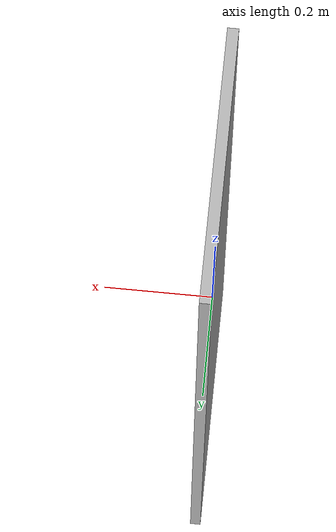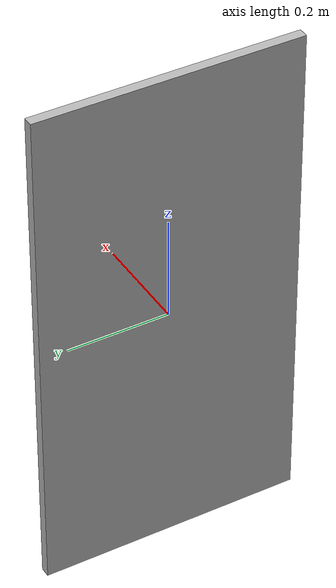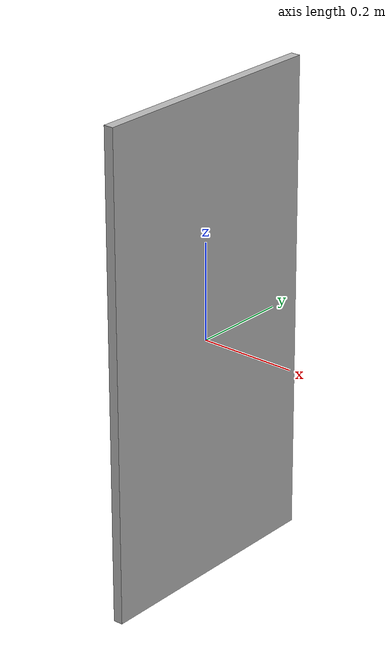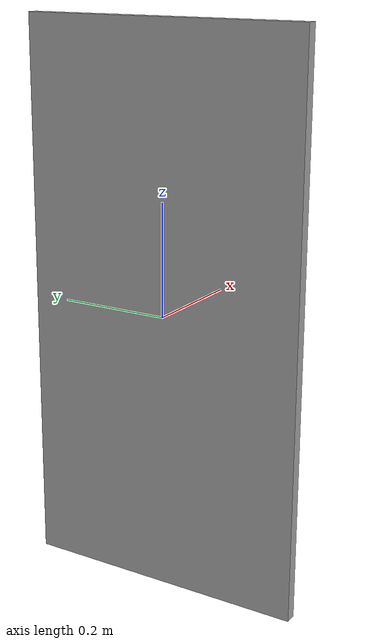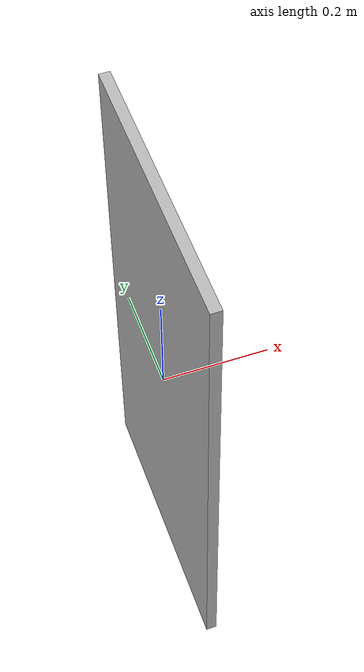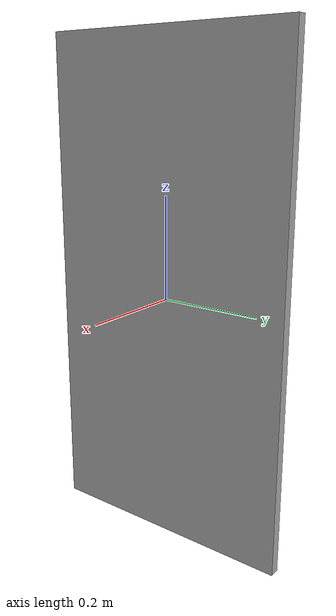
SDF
<?xml version="1.0"?>
<sdf version="1.6">
  <model name="person_photo_model">
    <static>true</static>
    <link name="link">
      <visual name="visual">
        <geometry>
          <box><size>0.02 0.521 1.0</size></box>
        </geometry>
        <material>
          <script>
            <uri>materials/scripts</uri>
            <uri>materials/textures</uri>
            <name>Person/Photo</name>
          </script>
        </material>
      </visual>
    </link>
  </model>
</sdf>
